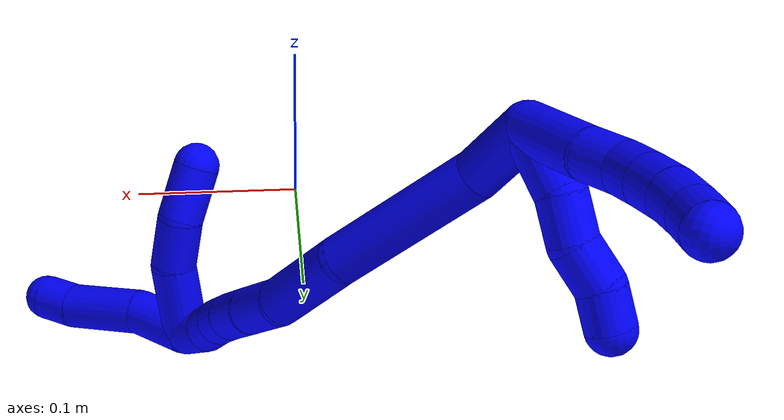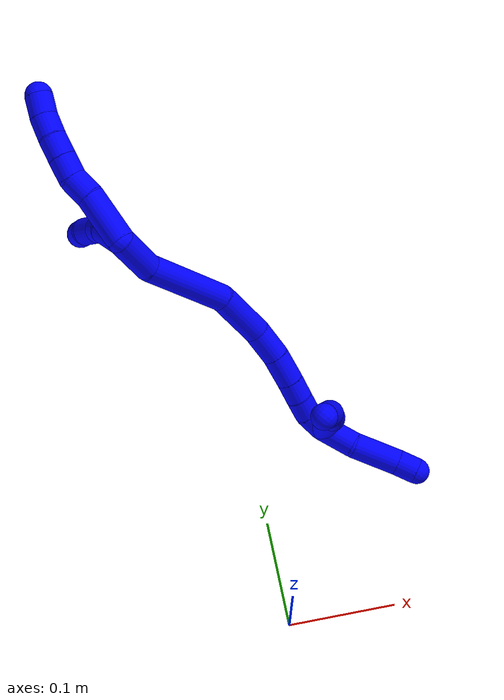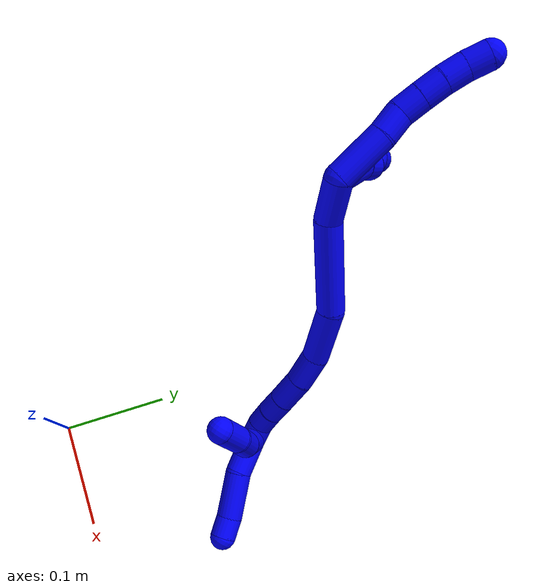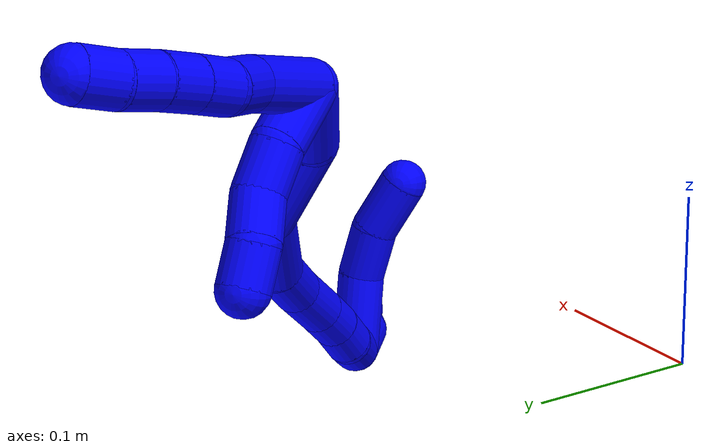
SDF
<sdf version="1.7">
 <world name="default">
  <model name="1">
   <static>0</static>
   <link name="1">
    <collision name="collision-cylinder-e_1_2_8">
     <pose>-0.005198 -0.002935 0.022794 0.12805 -0.222437 -0.01432</pose>
     <geometry><cylinder><radius>0.0125</radius><length>0.047126</length></cylinder></geometry>
     <surface>
      <friction><ode><mu>1.16</mu><mu2>1.16</mu2><slip1>0</slip1><slip2>0</slip2></ode></friction>
      <contact><ode><kp>1e+06</kp><kd>1</kd><max_vel>0</max_vel><min_depth>0.001</min_depth></ode></contact>
     </surface>
    </collision>
    <visual name="visual-cylinder-e_1_2_8">
     <pose>-0.005198 -0.002935 0.022794 0.12805 -0.222437 -0.01432</pose>
     <geometry><cylinder><radius>0.0125</radius><length>0.047126</length></cylinder></geometry>
     <material><ambient>0 0 1 1</ambient></material>
    </visual>
    <collision name="collision-cylinder-e_2_8_9">
     <pose>-0.011137 -0.006652 0.056628 0.070768 -0.066826 -0.002366</pose>
     <geometry><cylinder><radius>0.0125</radius><length>0.022184</length></cylinder></geometry>
     <surface>
      <friction><ode><mu>1.16</mu><mu2>1.16</mu2><slip1>0</slip1><slip2>0</slip2></ode></friction>
      <contact><ode><kp>1e+06</kp><kd>1</kd><max_vel>0</max_vel><min_depth>0.001</min_depth></ode></contact>
     </surface>
    </collision>
    <visual name="visual-cylinder-e_2_8_9">
     <pose>-0.011137 -0.006652 0.056628 0.070768 -0.066826 -0.002366</pose>
     <geometry><cylinder><radius>0.0125</radius><length>0.022184</length></cylinder></geometry>
     <material><ambient>0 0 1 1</ambient></material>
    </visual>
    <collision name="collision-cylinder-e_3_9_10">
     <pose>-0.015298 -0.009244 0.077019 0.191132 -0.344743 -0.033374</pose>
     <geometry><cylinder><radius>0.0125</radius><length>0.020241</length></cylinder></geometry>
     <surface>
      <friction><ode><mu>1.16</mu><mu2>1.16</mu2><slip1>0</slip1><slip2>0</slip2></ode></friction>
      <contact><ode><kp>1e+06</kp><kd>1</kd><max_vel>0</max_vel><min_depth>0.001</min_depth></ode></contact>
     </surface>
    </collision>
    <visual name="visual-cylinder-e_3_9_10">
     <pose>-0.015298 -0.009244 0.077019 0.191132 -0.344743 -0.033374</pose>
     <geometry><cylinder><radius>0.0125</radius><length>0.020241</length></cylinder></geometry>
     <material><ambient>0 0 1 1</ambient></material>
    </visual>
    <collision name="collision-cylinder-e_4_10_11">
     <pose>-0.022156 -0.013153 0.095739 0.220445 -0.343883 -0.038433</pose>
     <geometry><cylinder><radius>0.0125</radius><length>0.020394</length></cylinder></geometry>
     <surface>
      <friction><ode><mu>1.16</mu><mu2>1.16</mu2><slip1>0</slip1><slip2>0</slip2></ode></friction>
      <contact><ode><kp>1e+06</kp><kd>1</kd><max_vel>0</max_vel><min_depth>0.001</min_depth></ode></contact>
     </surface>
    </collision>
    <visual name="visual-cylinder-e_4_10_11">
     <pose>-0.022156 -0.013153 0.095739 0.220445 -0.343883 -0.038433</pose>
     <geometry><cylinder><radius>0.0125</radius><length>0.020394</length></cylinder></geometry>
     <material><ambient>0 0 1 1</ambient></material>
    </visual>
    <collision name="collision-cylinder-e_5_11_12">
     <pose>-0.029018 -0.018247 0.114041 0.323421 -0.348515 -0.057422</pose>
     <geometry><cylinder><radius>0.0125</radius><length>0.020052</length></cylinder></geometry>
     <surface>
      <friction><ode><mu>1.16</mu><mu2>1.16</mu2><slip1>0</slip1><slip2>0</slip2></ode></friction>
      <contact><ode><kp>1e+06</kp><kd>1</kd><max_vel>0</max_vel><min_depth>0.001</min_depth></ode></contact>
     </surface>
    </collision>
    <visual name="visual-cylinder-e_5_11_12">
     <pose>-0.029018 -0.018247 0.114041 0.323421 -0.348515 -0.057422</pose>
     <geometry><cylinder><radius>0.0125</radius><length>0.020052</length></cylinder></geometry>
     <material><ambient>0 0 1 1</ambient></material>
    </visual>
    <collision name="collision-cylinder-e_6_12_6">
     <pose>-0.03724 -0.024413 0.131158 0.369687 -0.500355 -0.095485</pose>
     <geometry><cylinder><radius>0.0125</radius><length>0.020003</length></cylinder></geometry>
     <surface>
      <friction><ode><mu>1.16</mu><mu2>1.16</mu2><slip1>0</slip1><slip2>0</slip2></ode></friction>
      <contact><ode><kp>1e+06</kp><kd>1</kd><max_vel>0</max_vel><min_depth>0.001</min_depth></ode></contact>
     </surface>
    </collision>
    <visual name="visual-cylinder-e_6_12_6">
     <pose>-0.03724 -0.024413 0.131158 0.369687 -0.500355 -0.095485</pose>
     <geometry><cylinder><radius>0.0125</radius><length>0.020003</length></cylinder></geometry>
     <material><ambient>0 0 1 1</ambient></material>
    </visual>
    <collision name="collision-cylinder-e_1_2_13">
     <pose>0.006559 -0.01064 0.011292 0.755649 0.39997 0.16055</pose>
     <geometry><cylinder><radius>0.0125</radius><length>0.033689</length></cylinder></geometry>
     <surface>
      <friction><ode><mu>1.16</mu><mu2>1.16</mu2><slip1>0</slip1><slip2>0</slip2></ode></friction>
      <contact><ode><kp>1e+06</kp><kd>1</kd><max_vel>0</max_vel><min_depth>0.001</min_depth></ode></contact>
     </surface>
    </collision>
    <visual name="visual-cylinder-e_1_2_13">
     <pose>0.006559 -0.01064 0.011292 0.755649 0.39997 0.16055</pose>
     <geometry><cylinder><radius>0.0125</radius><length>0.033689</length></cylinder></geometry>
     <material><ambient>0 0 1 1</ambient></material>
    </visual>
    <collision name="collision-cylinder-e_2_13_14">
     <pose>0.019192 -0.030196 0.027104 1.10165 0.545966 0.34061</pose>
     <geometry><cylinder><radius>0.0125</radius><length>0.023394</length></cylinder></geometry>
     <surface>
      <friction><ode><mu>1.16</mu><mu2>1.16</mu2><slip1>0</slip1><slip2>0</slip2></ode></friction>
      <contact><ode><kp>1e+06</kp><kd>1</kd><max_vel>0</max_vel><min_depth>0.001</min_depth></ode></contact>
     </surface>
    </collision>
    <visual name="visual-cylinder-e_2_13_14">
     <pose>0.019192 -0.030196 0.027104 1.10165 0.545966 0.34061</pose>
     <geometry><cylinder><radius>0.0125</radius><length>0.023394</length></cylinder></geometry>
     <material><ambient>0 0 1 1</ambient></material>
    </visual>
    <collision name="collision-cylinder-e_3_14_15">
     <pose>0.03324 -0.044712 0.037349 0.77432 0.783305 0.333652</pose>
     <geometry><cylinder><radius>0.0125</radius><length>0.022601</length></cylinder></geometry>
     <surface>
      <friction><ode><mu>1.16</mu><mu2>1.16</mu2><slip1>0</slip1><slip2>0</slip2></ode></friction>
      <contact><ode><kp>1e+06</kp><kd>1</kd><max_vel>0</max_vel><min_depth>0.001</min_depth></ode></contact>
     </surface>
    </collision>
    <visual name="visual-cylinder-e_3_14_15">
     <pose>0.03324 -0.044712 0.037349 0.77432 0.783305 0.333652</pose>
     <geometry><cylinder><radius>0.0125</radius><length>0.022601</length></cylinder></geometry>
     <material><ambient>0 0 1 1</ambient></material>
    </visual>
    <collision name="collision-cylinder-e_4_15_5">
     <pose>0.04755 -0.057705 0.045963 1.19818 0.673583 0.469331</pose>
     <geometry><cylinder><radius>0.0125</radius><length>0.020315</length></cylinder></geometry>
     <surface>
      <friction><ode><mu>1.16</mu><mu2>1.16</mu2><slip1>0</slip1><slip2>0</slip2></ode></friction>
      <contact><ode><kp>1e+06</kp><kd>1</kd><max_vel>0</max_vel><min_depth>0.001</min_depth></ode></contact>
     </surface>
    </collision>
    <visual name="visual-cylinder-e_4_15_5">
     <pose>0.04755 -0.057705 0.045963 1.19818 0.673583 0.469331</pose>
     <geometry><cylinder><radius>0.0125</radius><length>0.020315</length></cylinder></geometry>
     <material><ambient>0 0 1 1</ambient></material>
    </visual>
    <collision name="collision-cylinder-e_1_2_16">
     <pose>0.007409 -0.012489 -0.014176 2.41937 0.373736 0.928298</pose>
     <geometry><cylinder><radius>0.0125</radius><length>0.040586</length></cylinder></geometry>
     <surface>
      <friction><ode><mu>1.16</mu><mu2>1.16</mu2><slip1>0</slip1><slip2>0</slip2></ode></friction>
      <contact><ode><kp>1e+06</kp><kd>1</kd><max_vel>0</max_vel><min_depth>0.001</min_depth></ode></contact>
     </surface>
    </collision>
    <visual name="visual-cylinder-e_1_2_16">
     <pose>0.007409 -0.012489 -0.014176 2.41937 0.373736 0.928298</pose>
     <geometry><cylinder><radius>0.0125</radius><length>0.040586</length></cylinder></geometry>
     <material><ambient>0 0 1 1</ambient></material>
    </visual>
    <collision name="collision-cylinder-e_2_16_17">
     <pose>0.017487 -0.055331 -0.058325 2.34991 0.062491 0.149306</pose>
     <geometry><cylinder><radius>0.0125</radius><length>0.085484</length></cylinder></geometry>
     <surface>
      <friction><ode><mu>1.16</mu><mu2>1.16</mu2><slip1>0</slip1><slip2>0</slip2></ode></friction>
      <contact><ode><kp>1e+06</kp><kd>1</kd><max_vel>0</max_vel><min_depth>0.001</min_depth></ode></contact>
     </surface>
    </collision>
    <visual name="visual-cylinder-e_2_16_17">
     <pose>0.017487 -0.055331 -0.058325 2.34991 0.062491 0.149306</pose>
     <geometry><cylinder><radius>0.0125</radius><length>0.085484</length></cylinder></geometry>
     <material><ambient>0 0 1 1</ambient></material>
    </visual>
    <collision name="collision-cylinder-e_3_17_18">
     <pose>0.028721 -0.100248 -0.108747 2.5227 0.328767 0.957196</pose>
     <geometry><cylinder><radius>0.0125</radius><length>0.05305</length></cylinder></geometry>
     <surface>
      <friction><ode><mu>1.16</mu><mu2>1.16</mu2><slip1>0</slip1><slip2>0</slip2></ode></friction>
      <contact><ode><kp>1e+06</kp><kd>1</kd><max_vel>0</max_vel><min_depth>0.001</min_depth></ode></contact>
     </surface>
    </collision>
    <visual name="visual-cylinder-e_3_17_18">
     <pose>0.028721 -0.100248 -0.108747 2.5227 0.328767 0.957196</pose>
     <geometry><cylinder><radius>0.0125</radius><length>0.05305</length></cylinder></geometry>
     <material><ambient>0 0 1 1</ambient></material>
    </visual>
    <collision name="collision-cylinder-e_4_18_19">
     <pose>0.042834 -0.119552 -0.142751 2.80518 0.368713 1.66427</pose>
     <geometry><cylinder><radius>0.0125</radius><length>0.030792</length></cylinder></geometry>
     <surface>
      <friction><ode><mu>1.16</mu><mu2>1.16</mu2><slip1>0</slip1><slip2>0</slip2></ode></friction>
      <contact><ode><kp>1e+06</kp><kd>1</kd><max_vel>0</max_vel><min_depth>0.001</min_depth></ode></contact>
     </surface>
    </collision>
    <visual name="visual-cylinder-e_4_18_19">
     <pose>0.042834 -0.119552 -0.142751 2.80518 0.368713 1.66427</pose>
     <geometry><cylinder><radius>0.0125</radius><length>0.030792</length></cylinder></geometry>
     <material><ambient>0 0 1 1</ambient></material>
    </visual>
    <collision name="collision-cylinder-e_5_19_20">
     <pose>0.055145 -0.127617 -0.168835 2.8822 0.480864 2.16379</pose>
     <geometry><cylinder><radius>0.0125</radius><length>0.029239</length></cylinder></geometry>
     <surface>
      <friction><ode><mu>1.16</mu><mu2>1.16</mu2><slip1>0</slip1><slip2>0</slip2></ode></friction>
      <contact><ode><kp>1e+06</kp><kd>1</kd><max_vel>0</max_vel><min_depth>0.001</min_depth></ode></contact>
     </surface>
    </collision>
    <visual name="visual-cylinder-e_5_19_20">
     <pose>0.055145 -0.127617 -0.168835 2.8822 0.480864 2.16379</pose>
     <geometry><cylinder><radius>0.0125</radius><length>0.029239</length></cylinder></geometry>
     <material><ambient>0 0 1 1</ambient></material>
    </visual>
    <collision name="collision-cylinder-e_6_20_21">
     <pose>0.066929 -0.133332 -0.189764 2.8644 0.521832 2.17872</pose>
     <geometry><cylinder><radius>0.0125</radius><length>0.02015</length></cylinder></geometry>
     <surface>
      <friction><ode><mu>1.16</mu><mu2>1.16</mu2><slip1>0</slip1><slip2>0</slip2></ode></friction>
      <contact><ode><kp>1e+06</kp><kd>1</kd><max_vel>0</max_vel><min_depth>0.001</min_depth></ode></contact>
     </surface>
    </collision>
    <visual name="visual-cylinder-e_6_20_21">
     <pose>0.066929 -0.133332 -0.189764 2.8644 0.521832 2.17872</pose>
     <geometry><cylinder><radius>0.0125</radius><length>0.02015</length></cylinder></geometry>
     <material><ambient>0 0 1 1</ambient></material>
    </visual>
    <collision name="collision-cylinder-e_7_21_22">
     <pose>0.077081 -0.138889 -0.206248 2.76824 0.533683 1.93236</pose>
     <geometry><cylinder><radius>0.0125</radius><length>0.020169</length></cylinder></geometry>
     <surface>
      <friction><ode><mu>1.16</mu><mu2>1.16</mu2><slip1>0</slip1><slip2>0</slip2></ode></friction>
      <contact><ode><kp>1e+06</kp><kd>1</kd><max_vel>0</max_vel><min_depth>0.001</min_depth></ode></contact>
     </surface>
    </collision>
    <visual name="visual-cylinder-e_7_21_22">
     <pose>0.077081 -0.138889 -0.206248 2.76824 0.533683 1.93236</pose>
     <geometry><cylinder><radius>0.0125</radius><length>0.020169</length></cylinder></geometry>
     <material><ambient>0 0 1 1</ambient></material>
    </visual>
    <collision name="collision-cylinder-e_8_22_1">
     <pose>0.084377 -0.145265 -0.223839 2.81606 0.212622 1.15249</pose>
     <geometry><cylinder><radius>0.0125</radius><length>0.020531</length></cylinder></geometry>
     <surface>
      <friction><ode><mu>1.16</mu><mu2>1.16</mu2><slip1>0</slip1><slip2>0</slip2></ode></friction>
      <contact><ode><kp>1e+06</kp><kd>1</kd><max_vel>0</max_vel><min_depth>0.001</min_depth></ode></contact>
     </surface>
    </collision>
    <visual name="visual-cylinder-e_8_22_1">
     <pose>0.084377 -0.145265 -0.223839 2.81606 0.212622 1.15249</pose>
     <geometry><cylinder><radius>0.0125</radius><length>0.020531</length></cylinder></geometry>
     <material><ambient>0 0 1 1</ambient></material>
    </visual>
    <collision name="collision-cylinder-e_1_1_23">
     <pose>0.083035 -0.149056 -0.25017 3.10699 -0.205514 -2.80906</pose>
     <geometry><cylinder><radius>0.0125</radius><length>0.034391</length></cylinder></geometry>
     <surface>
      <friction><ode><mu>1.16</mu><mu2>1.16</mu2><slip1>0</slip1><slip2>0</slip2></ode></friction>
      <contact><ode><kp>1e+06</kp><kd>1</kd><max_vel>0</max_vel><min_depth>0.001</min_depth></ode></contact>
     </surface>
    </collision>
    <visual name="visual-cylinder-e_1_1_23">
     <pose>0.083035 -0.149056 -0.25017 3.10699 -0.205514 -2.80906</pose>
     <geometry><cylinder><radius>0.0125</radius><length>0.034391</length></cylinder></geometry>
     <material><ambient>0 0 1 1</ambient></material>
    </visual>
    <collision name="collision-cylinder-e_2_23_24">
     <pose>0.074832 -0.156251 -0.288066 2.83751 -0.209424 -1.20241</pose>
     <geometry><cylinder><radius>0.0125</radius><length>0.045158</length></cylinder></geometry>
     <surface>
      <friction><ode><mu>1.16</mu><mu2>1.16</mu2><slip1>0</slip1><slip2>0</slip2></ode></friction>
      <contact><ode><kp>1e+06</kp><kd>1</kd><max_vel>0</max_vel><min_depth>0.001</min_depth></ode></contact>
     </surface>
    </collision>
    <visual name="visual-cylinder-e_2_23_24">
     <pose>0.074832 -0.156251 -0.288066 2.83751 -0.209424 -1.20241</pose>
     <geometry><cylinder><radius>0.0125</radius><length>0.045158</length></cylinder></geometry>
     <material><ambient>0 0 1 1</ambient></material>
    </visual>
    <collision name="collision-cylinder-e_3_24_4">
     <pose>0.067606 -0.164101 -0.318968 3.01647 -0.25017 -2.21719</pose>
     <geometry><cylinder><radius>0.0125</radius><length>0.020452</length></cylinder></geometry>
     <surface>
      <friction><ode><mu>1.16</mu><mu2>1.16</mu2><slip1>0</slip1><slip2>0</slip2></ode></friction>
      <contact><ode><kp>1e+06</kp><kd>1</kd><max_vel>0</max_vel><min_depth>0.001</min_depth></ode></contact>
     </surface>
    </collision>
    <visual name="visual-cylinder-e_3_24_4">
     <pose>0.067606 -0.164101 -0.318968 3.01647 -0.25017 -2.21719</pose>
     <geometry><cylinder><radius>0.0125</radius><length>0.020452</length></cylinder></geometry>
     <material><ambient>0 0 1 1</ambient></material>
    </visual>
    <collision name="collision-cylinder-e_1_1_25">
     <pose>0.071895 -0.133645 -0.234016 -1.6159 -0.778753 0.810953</pose>
     <geometry><cylinder><radius>0.0125</radius><length>0.04171</length></cylinder></geometry>
     <surface>
      <friction><ode><mu>1.16</mu><mu2>1.16</mu2><slip1>0</slip1><slip2>0</slip2></ode></friction>
      <contact><ode><kp>1e+06</kp><kd>1</kd><max_vel>0</max_vel><min_depth>0.001</min_depth></ode></contact>
     </surface>
    </collision>
    <visual name="visual-cylinder-e_1_1_25">
     <pose>0.071895 -0.133645 -0.234016 -1.6159 -0.778753 0.810953</pose>
     <geometry><cylinder><radius>0.0125</radius><length>0.04171</length></cylinder></geometry>
     <material><ambient>0 0 1 1</ambient></material>
    </visual>
    <collision name="collision-cylinder-e_2_25_26">
     <pose>0.050299 -0.106933 -0.23282 -1.41512 -0.52381 0.450754</pose>
     <geometry><cylinder><radius>0.0125</radius><length>0.027781</length></cylinder></geometry>
     <surface>
      <friction><ode><mu>1.16</mu><mu2>1.16</mu2><slip1>0</slip1><slip2>0</slip2></ode></friction>
      <contact><ode><kp>1e+06</kp><kd>1</kd><max_vel>0</max_vel><min_depth>0.001</min_depth></ode></contact>
     </surface>
    </collision>
    <visual name="visual-cylinder-e_2_25_26">
     <pose>0.050299 -0.106933 -0.23282 -1.41512 -0.52381 0.450754</pose>
     <geometry><cylinder><radius>0.0125</radius><length>0.027781</length></cylinder></geometry>
     <material><ambient>0 0 1 1</ambient></material>
    </visual>
    <collision name="collision-cylinder-e_3_26_3">
     <pose>0.039234 -0.080391 -0.230025 -1.50743 -0.273312 0.25671</pose>
     <geometry><cylinder><radius>0.0125</radius><length>0.030509</length></cylinder></geometry>
     <surface>
      <friction><ode><mu>1.16</mu><mu2>1.16</mu2><slip1>0</slip1><slip2>0</slip2></ode></friction>
      <contact><ode><kp>1e+06</kp><kd>1</kd><max_vel>0</max_vel><min_depth>0.001</min_depth></ode></contact>
     </surface>
    </collision>
    <visual name="visual-cylinder-e_3_26_3">
     <pose>0.039234 -0.080391 -0.230025 -1.50743 -0.273312 0.25671</pose>
     <geometry><cylinder><radius>0.0125</radius><length>0.030509</length></cylinder></geometry>
     <material><ambient>0 0 1 1</ambient></material>
    </visual>
    <collision name="collision-sphere-3">
     <pose>0.035116 -0.065732 -0.229095 0 -0 0</pose>
     <geometry><sphere><radius>0.0125</radius></sphere></geometry>
     <surface>
      <friction><ode><mu>1.16</mu><mu2>1.16</mu2><slip1>0</slip1><slip2>0</slip2></ode></friction>
      <contact><ode><kp>1e+06</kp><kd>1</kd><max_vel>0</max_vel><min_depth>0.001</min_depth></ode></contact>
     </surface>
    </collision>
    <visual name="visual-sphere-3">
     <pose>0.035116 -0.065732 -0.229095 0 -0 0</pose>
     <geometry><sphere><radius>0.0125</radius></sphere></geometry>
     <material><ambient>0 0 1 1</ambient></material>
    </visual>
    <collision name="collision-sphere-26">
     <pose>0.043352 -0.09505 -0.230955 0 -0 0</pose>
     <geometry><sphere><radius>0.0125</radius></sphere></geometry>
     <surface>
      <friction><ode><mu>1.16</mu><mu2>1.16</mu2><slip1>0</slip1><slip2>0</slip2></ode></friction>
      <contact><ode><kp>1e+06</kp><kd>1</kd><max_vel>0</max_vel><min_depth>0.001</min_depth></ode></contact>
     </surface>
    </collision>
    <visual name="visual-sphere-26">
     <pose>0.043352 -0.09505 -0.230955 0 -0 0</pose>
     <geometry><sphere><radius>0.0125</radius></sphere></geometry>
     <material><ambient>0 0 1 1</ambient></material>
    </visual>
    <collision name="collision-sphere-25">
     <pose>0.057247 -0.118815 -0.234685 0 -0 0</pose>
     <geometry><sphere><radius>0.0125</radius></sphere></geometry>
     <surface>
      <friction><ode><mu>1.16</mu><mu2>1.16</mu2><slip1>0</slip1><slip2>0</slip2></ode></friction>
      <contact><ode><kp>1e+06</kp><kd>1</kd><max_vel>0</max_vel><min_depth>0.001</min_depth></ode></contact>
     </surface>
    </collision>
    <visual name="visual-sphere-25">
     <pose>0.057247 -0.118815 -0.234685 0 -0 0</pose>
     <geometry><sphere><radius>0.0125</radius></sphere></geometry>
     <material><ambient>0 0 1 1</ambient></material>
    </visual>
    <collision name="collision-sphere-4">
     <pose>0.065074 -0.165337 -0.328798 0 -0 0</pose>
     <geometry><sphere><radius>0.0125</radius></sphere></geometry>
     <surface>
      <friction><ode><mu>1.16</mu><mu2>1.16</mu2><slip1>0</slip1><slip2>0</slip2></ode></friction>
      <contact><ode><kp>1e+06</kp><kd>1</kd><max_vel>0</max_vel><min_depth>0.001</min_depth></ode></contact>
     </surface>
    </collision>
    <visual name="visual-sphere-4">
     <pose>0.065074 -0.165337 -0.328798 0 -0 0</pose>
     <geometry><sphere><radius>0.0125</radius></sphere></geometry>
     <material><ambient>0 0 1 1</ambient></material>
    </visual>
    <collision name="collision-sphere-24">
     <pose>0.070137 -0.162864 -0.309138 0 -0 0</pose>
     <geometry><sphere><radius>0.0125</radius></sphere></geometry>
     <surface>
      <friction><ode><mu>1.16</mu><mu2>1.16</mu2><slip1>0</slip1><slip2>0</slip2></ode></friction>
      <contact><ode><kp>1e+06</kp><kd>1</kd><max_vel>0</max_vel><min_depth>0.001</min_depth></ode></contact>
     </surface>
    </collision>
    <visual name="visual-sphere-24">
     <pose>0.070137 -0.162864 -0.309138 0 -0 0</pose>
     <geometry><sphere><radius>0.0125</radius></sphere></geometry>
     <material><ambient>0 0 1 1</ambient></material>
    </visual>
    <collision name="collision-sphere-23">
     <pose>0.079526 -0.149639 -0.266993 0 -0 0</pose>
     <geometry><sphere><radius>0.0125</radius></sphere></geometry>
     <surface>
      <friction><ode><mu>1.16</mu><mu2>1.16</mu2><slip1>0</slip1><slip2>0</slip2></ode></friction>
      <contact><ode><kp>1e+06</kp><kd>1</kd><max_vel>0</max_vel><min_depth>0.001</min_depth></ode></contact>
     </surface>
    </collision>
    <visual name="visual-sphere-23">
     <pose>0.079526 -0.149639 -0.266993 0 -0 0</pose>
     <geometry><sphere><radius>0.0125</radius></sphere></geometry>
     <material><ambient>0 0 1 1</ambient></material>
    </visual>
    <collision name="collision-sphere-1">
     <pose>0.086544 -0.148474 -0.233347 0 -0 0</pose>
     <geometry><sphere><radius>0.0125</radius></sphere></geometry>
     <surface>
      <friction><ode><mu>1.16</mu><mu2>1.16</mu2><slip1>0</slip1><slip2>0</slip2></ode></friction>
      <contact><ode><kp>1e+06</kp><kd>1</kd><max_vel>0</max_vel><min_depth>0.001</min_depth></ode></contact>
     </surface>
    </collision>
    <visual name="visual-sphere-1">
     <pose>0.086544 -0.148474 -0.233347 0 -0 0</pose>
     <geometry><sphere><radius>0.0125</radius></sphere></geometry>
     <material><ambient>0 0 1 1</ambient></material>
    </visual>
    <collision name="collision-sphere-22">
     <pose>0.082211 -0.142056 -0.214332 0 -0 0</pose>
     <geometry><sphere><radius>0.0125</radius></sphere></geometry>
     <surface>
      <friction><ode><mu>1.16</mu><mu2>1.16</mu2><slip1>0</slip1><slip2>0</slip2></ode></friction>
      <contact><ode><kp>1e+06</kp><kd>1</kd><max_vel>0</max_vel><min_depth>0.001</min_depth></ode></contact>
     </surface>
    </collision>
    <visual name="visual-sphere-22">
     <pose>0.082211 -0.142056 -0.214332 0 -0 0</pose>
     <geometry><sphere><radius>0.0125</radius></sphere></geometry>
     <material><ambient>0 0 1 1</ambient></material>
    </visual>
    <collision name="collision-sphere-21">
     <pose>0.071951 -0.135722 -0.198164 0 -0 0</pose>
     <geometry><sphere><radius>0.0125</radius></sphere></geometry>
     <surface>
      <friction><ode><mu>1.16</mu><mu2>1.16</mu2><slip1>0</slip1><slip2>0</slip2></ode></friction>
      <contact><ode><kp>1e+06</kp><kd>1</kd><max_vel>0</max_vel><min_depth>0.001</min_depth></ode></contact>
     </surface>
    </collision>
    <visual name="visual-sphere-21">
     <pose>0.071951 -0.135722 -0.198164 0 -0 0</pose>
     <geometry><sphere><radius>0.0125</radius></sphere></geometry>
     <material><ambient>0 0 1 1</ambient></material>
    </visual>
    <collision name="collision-sphere-12">
     <pose>-0.032442 -0.021242 0.122976 0 -0 0</pose>
     <geometry><sphere><radius>0.0125</radius></sphere></geometry>
     <surface>
      <friction><ode><mu>1.16</mu><mu2>1.16</mu2><slip1>0</slip1><slip2>0</slip2></ode></friction>
      <contact><ode><kp>1e+06</kp><kd>1</kd><max_vel>0</max_vel><min_depth>0.001</min_depth></ode></contact>
     </surface>
    </collision>
    <visual name="visual-sphere-12">
     <pose>-0.032442 -0.021242 0.122976 0 -0 0</pose>
     <geometry><sphere><radius>0.0125</radius></sphere></geometry>
     <material><ambient>0 0 1 1</ambient></material>
    </visual>
    <collision name="collision-sphere-11">
     <pose>-0.025594 -0.015252 0.105107 0 -0 0</pose>
     <geometry><sphere><radius>0.0125</radius></sphere></geometry>
     <surface>
      <friction><ode><mu>1.16</mu><mu2>1.16</mu2><slip1>0</slip1><slip2>0</slip2></ode></friction>
      <contact><ode><kp>1e+06</kp><kd>1</kd><max_vel>0</max_vel><min_depth>0.001</min_depth></ode></contact>
     </surface>
    </collision>
    <visual name="visual-sphere-11">
     <pose>-0.025594 -0.015252 0.105107 0 -0 0</pose>
     <geometry><sphere><radius>0.0125</radius></sphere></geometry>
     <material><ambient>0 0 1 1</ambient></material>
    </visual>
    <collision name="collision-sphere-10">
     <pose>-0.018718 -0.011054 0.086371 0 -0 0</pose>
     <geometry><sphere><radius>0.0125</radius></sphere></geometry>
     <surface>
      <friction><ode><mu>1.16</mu><mu2>1.16</mu2><slip1>0</slip1><slip2>0</slip2></ode></friction>
      <contact><ode><kp>1e+06</kp><kd>1</kd><max_vel>0</max_vel><min_depth>0.001</min_depth></ode></contact>
     </surface>
    </collision>
    <visual name="visual-sphere-10">
     <pose>-0.018718 -0.011054 0.086371 0 -0 0</pose>
     <geometry><sphere><radius>0.0125</radius></sphere></geometry>
     <material><ambient>0 0 1 1</ambient></material>
    </visual>
    <collision name="collision-sphere-9">
     <pose>-0.011878 -0.007435 0.067668 0 -0 0</pose>
     <geometry><sphere><radius>0.0125</radius></sphere></geometry>
     <surface>
      <friction><ode><mu>1.16</mu><mu2>1.16</mu2><slip1>0</slip1><slip2>0</slip2></ode></friction>
      <contact><ode><kp>1e+06</kp><kd>1</kd><max_vel>0</max_vel><min_depth>0.001</min_depth></ode></contact>
     </surface>
    </collision>
    <visual name="visual-sphere-9">
     <pose>-0.011878 -0.007435 0.067668 0 -0 0</pose>
     <geometry><sphere><radius>0.0125</radius></sphere></geometry>
     <material><ambient>0 0 1 1</ambient></material>
    </visual>
    <collision name="collision-sphere-2">
     <geometry><sphere><radius>0.0125</radius></sphere></geometry>
     <surface>
      <friction><ode><mu>1.16</mu><mu2>1.16</mu2><slip1>0</slip1><slip2>0</slip2></ode></friction>
      <contact><ode><kp>1e+06</kp><kd>1</kd><max_vel>0</max_vel><min_depth>0.001</min_depth></ode></contact>
     </surface>
    </collision>
    <visual name="visual-sphere-2">
     <geometry><sphere><radius>0.0125</radius></sphere></geometry>
     <material><ambient>0 0 1 1</ambient></material>
    </visual>
    <collision name="collision-sphere-19">
     <pose>0.048383 -0.124293 -0.156307 0 -0 0</pose>
     <geometry><sphere><radius>0.0125</radius></sphere></geometry>
     <surface>
      <friction><ode><mu>1.16</mu><mu2>1.16</mu2><slip1>0</slip1><slip2>0</slip2></ode></friction>
      <contact><ode><kp>1e+06</kp><kd>1</kd><max_vel>0</max_vel><min_depth>0.001</min_depth></ode></contact>
     </surface>
    </collision>
    <visual name="visual-sphere-19">
     <pose>0.048383 -0.124293 -0.156307 0 -0 0</pose>
     <geometry><sphere><radius>0.0125</radius></sphere></geometry>
     <material><ambient>0 0 1 1</ambient></material>
    </visual>
    <collision name="collision-sphere-8">
     <pose>-0.010396 -0.00587 0.045589 0 -0 0</pose>
     <geometry><sphere><radius>0.0125</radius></sphere></geometry>
     <surface>
      <friction><ode><mu>1.16</mu><mu2>1.16</mu2><slip1>0</slip1><slip2>0</slip2></ode></friction>
      <contact><ode><kp>1e+06</kp><kd>1</kd><max_vel>0</max_vel><min_depth>0.001</min_depth></ode></contact>
     </surface>
    </collision>
    <visual name="visual-sphere-8">
     <pose>-0.010396 -0.00587 0.045589 0 -0 0</pose>
     <geometry><sphere><radius>0.0125</radius></sphere></geometry>
     <material><ambient>0 0 1 1</ambient></material>
    </visual>
    <collision name="collision-sphere-6">
     <pose>-0.042038 -0.027583 0.139341 0 -0 0</pose>
     <geometry><sphere><radius>0.0125</radius></sphere></geometry>
     <surface>
      <friction><ode><mu>1.16</mu><mu2>1.16</mu2><slip1>0</slip1><slip2>0</slip2></ode></friction>
      <contact><ode><kp>1e+06</kp><kd>1</kd><max_vel>0</max_vel><min_depth>0.001</min_depth></ode></contact>
     </surface>
    </collision>
    <visual name="visual-sphere-6">
     <pose>-0.042038 -0.027583 0.139341 0 -0 0</pose>
     <geometry><sphere><radius>0.0125</radius></sphere></geometry>
     <material><ambient>0 0 1 1</ambient></material>
    </visual>
    <collision name="collision-sphere-13">
     <pose>0.013118 -0.021279 0.022585 0 -0 0</pose>
     <geometry><sphere><radius>0.0125</radius></sphere></geometry>
     <surface>
      <friction><ode><mu>1.16</mu><mu2>1.16</mu2><slip1>0</slip1><slip2>0</slip2></ode></friction>
      <contact><ode><kp>1e+06</kp><kd>1</kd><max_vel>0</max_vel><min_depth>0.001</min_depth></ode></contact>
     </surface>
    </collision>
    <visual name="visual-sphere-13">
     <pose>0.013118 -0.021279 0.022585 0 -0 0</pose>
     <geometry><sphere><radius>0.0125</radius></sphere></geometry>
     <material><ambient>0 0 1 1</ambient></material>
    </visual>
    <collision name="collision-sphere-14">
     <pose>0.025266 -0.039113 0.031624 0 -0 0</pose>
     <geometry><sphere><radius>0.0125</radius></sphere></geometry>
     <surface>
      <friction><ode><mu>1.16</mu><mu2>1.16</mu2><slip1>0</slip1><slip2>0</slip2></ode></friction>
      <contact><ode><kp>1e+06</kp><kd>1</kd><max_vel>0</max_vel><min_depth>0.001</min_depth></ode></contact>
     </surface>
    </collision>
    <visual name="visual-sphere-14">
     <pose>0.025266 -0.039113 0.031624 0 -0 0</pose>
     <geometry><sphere><radius>0.0125</radius></sphere></geometry>
     <material><ambient>0 0 1 1</ambient></material>
    </visual>
    <collision name="collision-sphere-15">
     <pose>0.041213 -0.050311 0.043073 0 -0 0</pose>
     <geometry><sphere><radius>0.0125</radius></sphere></geometry>
     <surface>
      <friction><ode><mu>1.16</mu><mu2>1.16</mu2><slip1>0</slip1><slip2>0</slip2></ode></friction>
      <contact><ode><kp>1e+06</kp><kd>1</kd><max_vel>0</max_vel><min_depth>0.001</min_depth></ode></contact>
     </surface>
    </collision>
    <visual name="visual-sphere-15">
     <pose>0.041213 -0.050311 0.043073 0 -0 0</pose>
     <geometry><sphere><radius>0.0125</radius></sphere></geometry>
     <material><ambient>0 0 1 1</ambient></material>
    </visual>
    <collision name="collision-sphere-5">
     <pose>0.053886 -0.065099 0.048854 0 -0 0</pose>
     <geometry><sphere><radius>0.0125</radius></sphere></geometry>
     <surface>
      <friction><ode><mu>1.16</mu><mu2>1.16</mu2><slip1>0</slip1><slip2>0</slip2></ode></friction>
      <contact><ode><kp>1e+06</kp><kd>1</kd><max_vel>0</max_vel><min_depth>0.001</min_depth></ode></contact>
     </surface>
    </collision>
    <visual name="visual-sphere-5">
     <pose>0.053886 -0.065099 0.048854 0 -0 0</pose>
     <geometry><sphere><radius>0.0125</radius></sphere></geometry>
     <material><ambient>0 0 1 1</ambient></material>
    </visual>
    <collision name="collision-sphere-16">
     <pose>0.014818 -0.024978 -0.028351 0 -0 0</pose>
     <geometry><sphere><radius>0.0125</radius></sphere></geometry>
     <surface>
      <friction><ode><mu>1.16</mu><mu2>1.16</mu2><slip1>0</slip1><slip2>0</slip2></ode></friction>
      <contact><ode><kp>1e+06</kp><kd>1</kd><max_vel>0</max_vel><min_depth>0.001</min_depth></ode></contact>
     </surface>
    </collision>
    <visual name="visual-sphere-16">
     <pose>0.014818 -0.024978 -0.028351 0 -0 0</pose>
     <geometry><sphere><radius>0.0125</radius></sphere></geometry>
     <material><ambient>0 0 1 1</ambient></material>
    </visual>
    <collision name="collision-sphere-17">
     <pose>0.020156 -0.085684 -0.088299 0 -0 0</pose>
     <geometry><sphere><radius>0.0125</radius></sphere></geometry>
     <surface>
      <friction><ode><mu>1.16</mu><mu2>1.16</mu2><slip1>0</slip1><slip2>0</slip2></ode></friction>
      <contact><ode><kp>1e+06</kp><kd>1</kd><max_vel>0</max_vel><min_depth>0.001</min_depth></ode></contact>
     </surface>
    </collision>
    <visual name="visual-sphere-17">
     <pose>0.020156 -0.085684 -0.088299 0 -0 0</pose>
     <geometry><sphere><radius>0.0125</radius></sphere></geometry>
     <material><ambient>0 0 1 1</ambient></material>
    </visual>
    <collision name="collision-sphere-18">
     <pose>0.037285 -0.114811 -0.129195 0 -0 0</pose>
     <geometry><sphere><radius>0.0125</radius></sphere></geometry>
     <surface>
      <friction><ode><mu>1.16</mu><mu2>1.16</mu2><slip1>0</slip1><slip2>0</slip2></ode></friction>
      <contact><ode><kp>1e+06</kp><kd>1</kd><max_vel>0</max_vel><min_depth>0.001</min_depth></ode></contact>
     </surface>
    </collision>
    <visual name="visual-sphere-18">
     <pose>0.037285 -0.114811 -0.129195 0 -0 0</pose>
     <geometry><sphere><radius>0.0125</radius></sphere></geometry>
     <material><ambient>0 0 1 1</ambient></material>
    </visual>
    <collision name="collision-sphere-20">
     <pose>0.061907 -0.130942 -0.181363 0 -0 0</pose>
     <geometry><sphere><radius>0.0125</radius></sphere></geometry>
     <surface>
      <friction><ode><mu>1.16</mu><mu2>1.16</mu2><slip1>0</slip1><slip2>0</slip2></ode></friction>
      <contact><ode><kp>1e+06</kp><kd>1</kd><max_vel>0</max_vel><min_depth>0.001</min_depth></ode></contact>
     </surface>
    </collision>
    <visual name="visual-sphere-20">
     <pose>0.061907 -0.130942 -0.181363 0 -0 0</pose>
     <geometry><sphere><radius>0.0125</radius></sphere></geometry>
     <material><ambient>0 0 1 1</ambient></material>
    </visual>
    <inertial>
     <pose>0.031871 -0.077089 -0.094772 0 -0 0</pose>
     <mass>0.75</mass>
     <inertia><ixx>0.000129</ixx><ixy>0</ixy><ixz>0</ixz><iyy>9e-06</iyy><iyz>0</iyz><izz>4.1e-05</izz></inertia>
    </inertial>
   </link>
   <pose>-0.091279 0.299415 0.23345 1.29831 0.778479 -2.64698</pose>
  </model>
 </world>
</sdf>
